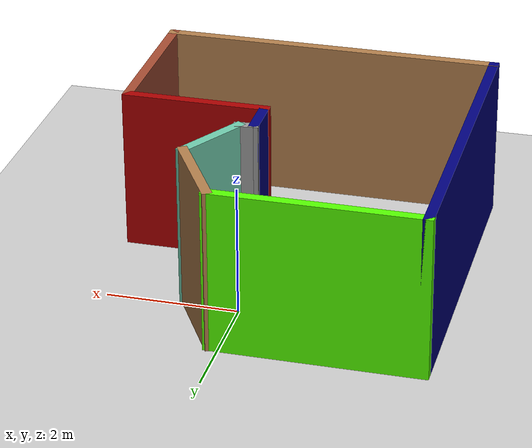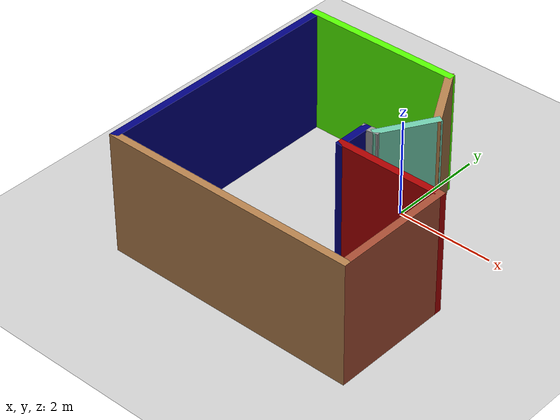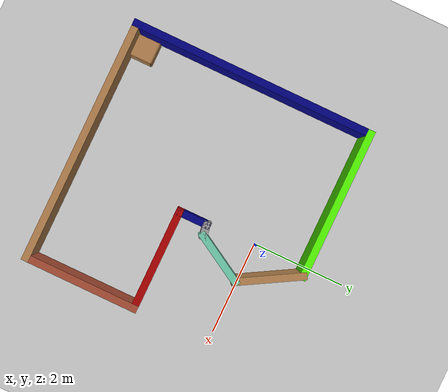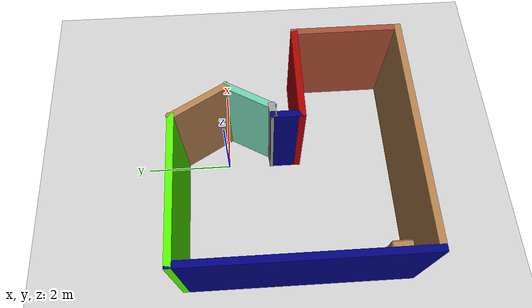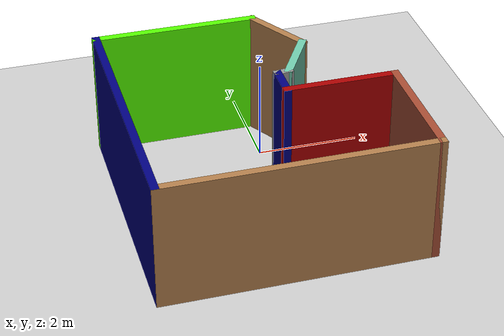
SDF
<sdf version="1.6">
 <world name="default">
  <light name="sun" type="directional">
   <pose>0 0 15 0 -0 0</pose>
   <diffuse>0.8 0.8 0.8 1</diffuse>
   <specular>0.2 0.2 0.2 1</specular>
   <attenuation>
    <range>1000</range>
    <constant>0.9</constant>
    <linear>0.01</linear>
    <quadratic>0.001</quadratic>
   </attenuation>
   <direction>-0.5 0.1 -0.9</direction>
  </light>
  <model name="ground_plane">
   <static>1</static>
   <link name="link">
    <collision name="collision">
     <geometry><plane><normal>0 0 1</normal><size>100 100</size></plane></geometry>
     <surface><friction><ode><mu>100</mu><mu2>50</mu2></ode></friction></surface>
    </collision>
    <visual name="visual">
     <transparency>1</transparency>
     <cast_shadows>0</cast_shadows>
     <geometry><plane><normal>0 0 1</normal><size>100 100</size></plane></geometry>
     <material>
      <script><uri>file://media/materials/scripts/gazebo.material</uri><name>Gazebo/Grey</name></script>
     </material>
    </visual>
   </link>
  </model>
  <gravity>0 0 -9.8</gravity>
  <magnetic_field>6e-06 2.3e-05 -4.2e-05</magnetic_field>
  <atmosphere type="adiabatic"/>
  <physics name="default_physics" default="0" type="ode">
   <max_step_size>0.001</max_step_size>
   <real_time_factor>1</real_time_factor>
   <real_time_update_rate>1000</real_time_update_rate>
  </physics>
  <scene><ambient>0.4 0.4 0.4 1</ambient><background>0.7 0.7 0.7 1</background><shadows>1</shadows></scene>
  <spherical_coordinates>
   <surface_model>EARTH_WGS84</surface_model>
   <latitude_deg>0</latitude_deg>
   <longitude_deg>0</longitude_deg>
   <elevation>0</elevation>
   <heading_deg>0</heading_deg>
  </spherical_coordinates>
  <model name="MyBuilding">
   <pose>-0.415 -1.46451 0 0 -0 0</pose>
   <link name="Wall_10">
    <collision name="Wall_10_Collision">
     <geometry><box><size>0.15 0.15 2.5</size></box></geometry>
     <pose>0 0 1.25 0 -0 0</pose>
    </collision>
    <visual name="Wall_10_Visual">
     <pose>0 0 1.25 0 -0 0</pose>
     <geometry><box><size>0.15 0.15 2.5</size></box></geometry>
     <material>
      <script><uri>file://media/materials/scripts/gazebo.material</uri><name>Gazebo/Grey</name></script>
      <ambient>1 1 1 1</ambient>
     </material>
     <meta><layer>0</layer></meta>
    </visual>
    <pose>0.45 0.386274 0 0 -0 0</pose>
   </link>
   <link name="Wall_12">
    <collision name="Wall_12_Collision">
     <geometry><box><size>0.75 0.15 2.5</size></box></geometry>
     <pose>0 0 1.25 0 -0 0</pose>
    </collision>
    <visual name="Wall_12_Visual">
     <pose>0 0 1.25 0 -0 0</pose>
     <geometry><box><size>0.75 0.15 2.5</size></box></geometry>
     <material>
      <script><uri>file://media/materials/scripts/gazebo.material</uri><name>Gazebo/Grey</name></script>
      <ambient>0 0 0.498039 1</ambient>
     </material>
     <meta><layer>0</layer></meta>
    </visual>
    <pose>0.45 0.086274 0 0 -0 1.5708</pose>
   </link>
   <link name="Wall_13">
    <collision name="Wall_13_Collision">
     <geometry><box><size>0.376765 0.15 2.5</size></box></geometry>
     <pose>0 0 1.25 0 -0 0</pose>
    </collision>
    <visual name="Wall_13_Visual">
     <pose>0 0 1.25 0 -0 0</pose>
     <geometry><box><size>0.376765 0.15 2.5</size></box></geometry>
     <material>
      <script><uri>file://media/materials/scripts/gazebo.material</uri><name>Gazebo/Grey</name></script>
      <ambient>1 1 1 1</ambient>
     </material>
     <meta><layer>0</layer></meta>
    </visual>
    <pose>0.5625 0.400393 0 0 -0 0.124848</pose>
   </link>
   <link name="Wall_2">
    <collision name="Wall_2_Collision">
     <geometry><box><size>1.25 0.15 2.5</size></box></geometry>
     <pose>0 0 1.25 0 -0 0</pose>
    </collision>
    <visual name="Wall_2_Visual">
     <pose>0 0 1.25 0 -0 0</pose>
     <geometry><box><size>1.25 0.15 2.5</size></box></geometry>
     <material>
      <script><uri>file://media/materials/scripts/gazebo.material</uri><name>Gazebo/Grey</name></script>
      <ambient>0.435294 0.796078 0.67451 1</ambient>
     </material>
     <meta><layer>0</layer></meta>
    </visual>
    <pose>0.95 0.890826 0 0 -0 1.0472</pose>
   </link>
   <link name="Wall_3">
    <collision name="Wall_3_Collision">
     <geometry><box><size>1.5 0.15 2.5</size></box></geometry>
     <pose>0 0 1.25 0 -0 0</pose>
    </collision>
    <visual name="Wall_3_Visual">
     <pose>0 0 1.25 0 -0 0</pose>
     <geometry><box><size>1.5 0.15 2.5</size></box></geometry>
     <material>
      <script><uri>file://media/materials/scripts/gazebo.material</uri><name>Gazebo/Wood</name></script>
      <ambient>1 1 1 1</ambient>
     </material>
     <meta><layer>0</layer></meta>
    </visual>
    <pose>0.8875 1.95171 0 0 -0 2.0944</pose>
   </link>
   <link name="Wall_4">
    <collision name="Wall_4_Collision">
     <geometry><box><size>3.25 0.15 2.5</size></box></geometry>
     <pose>0 0 1.25 0 -0 0</pose>
    </collision>
    <visual name="Wall_4_Visual">
     <pose>0 0 1.25 0 -0 0</pose>
     <geometry><box><size>3.25 0.15 2.5</size></box></geometry>
     <material>
      <script><uri>file://media/materials/scripts/gazebo.material</uri><name>Gazebo/Grey</name></script>
      <ambient>0.333333 1 0 1</ambient>
     </material>
     <meta><layer>0</layer></meta>
    </visual>
    <pose>-1 2.53627 0 0 -0 3.14159</pose>
   </link>
   <link name="Wall_5">
    <collision name="Wall_5_Collision">
     <geometry><box><size>5.25 0.15 2.5</size></box></geometry>
     <pose>0 0 1.25 0 -0 0</pose>
    </collision>
    <visual name="Wall_5_Visual">
     <pose>0 0 1.25 0 -0 0</pose>
     <geometry><box><size>5.25 0.15 2.5</size></box></geometry>
     <material>
      <script><uri>file://media/materials/scripts/gazebo.material</uri><name>Gazebo/Grey</name></script>
      <ambient>0 0 0.498039 1</ambient>
     </material>
     <meta><layer>0</layer></meta>
    </visual>
    <pose>-2.55 -0.013726 0 0 0 -1.5708</pose>
   </link>
   <link name="Wall_6">
    <collision name="Wall_6_Collision">
     <geometry><box><size>5.25 0.15 2.5</size></box></geometry>
     <pose>0 0 1.25 0 -0 0</pose>
    </collision>
    <visual name="Wall_6_Visual">
     <pose>0 0 1.25 0 -0 0</pose>
     <geometry><box><size>5.25 0.15 2.5</size></box></geometry>
     <material>
      <script><uri>file://media/materials/scripts/gazebo.material</uri><name>Gazebo/Wood</name></script>
      <ambient>1 1 1 1</ambient>
     </material>
     <meta><layer>0</layer></meta>
    </visual>
    <pose>0 -2.56373 0 0 -0 0</pose>
   </link>
   <link name="Wall_7">
    <collision name="Wall_7_Collision">
     <geometry><box><size>2.5 0.15 2.5</size></box></geometry>
     <pose>0 0 1.25 0 -0 0</pose>
    </collision>
    <visual name="Wall_7_Visual">
     <pose>0 0 1.25 0 -0 0</pose>
     <geometry><box><size>2.5 0.15 2.5</size></box></geometry>
     <material>
      <script><uri>file://media/materials/scripts/gazebo.material</uri><name>Gazebo/Bricks</name></script>
      <ambient>1 1 1 1</ambient>
     </material>
     <meta><layer>0</layer></meta>
    </visual>
    <pose>2.55 -1.38873 0 0 -0 1.5708</pose>
   </link>
   <link name="Wall_8">
    <collision name="Wall_8_Collision">
     <geometry><box><size>2.25 0.15 2.5</size></box></geometry>
     <pose>0 0 1.25 0 -0 0</pose>
    </collision>
    <visual name="Wall_8_Visual">
     <pose>0 0 1.25 0 -0 0</pose>
     <geometry><box><size>2.25 0.15 2.5</size></box></geometry>
     <material>
      <script><uri>file://media/materials/scripts/gazebo.material</uri><name>Gazebo/Grey</name></script>
      <ambient>0.666667 0 0 1</ambient>
     </material>
     <meta><layer>0</layer></meta>
    </visual>
    <pose>1.5 -0.213726 0 0 -0 3.14159</pose>
   </link>
   <static>1</static>
  </model>
  <model name="cabinet">
   <static>1</static>
   <link name="cabinet_bottom_plate">
    <inertial>
     <pose>0 0 -1 0 -0 0</pose>
     <inertia><ixx>2.05</ixx><ixy>0</ixy><ixz>0</ixz><iyy>2.05</iyy><iyz>0</iyz><izz>2.05</izz></inertia>
     <mass>25</mass>
    </inertial>
    <collision name="cabinet_bottom_plate_geom">
     <pose>0 0 0.01 0 -0 0</pose>
     <geometry><box><size>0.45 0.45 0.02</size></box></geometry>
    </collision>
    <visual name="cabinet_bottom_plate_geom_visual">
     <pose>0 0 0.01 0 -0 0</pose>
     <geometry><box><size>0.45 0.45 0.02</size></box></geometry>
     <material>
      <script><uri>file://media/materials/scripts/gazebo.material</uri><name>Gazebo/Wood</name></script>
     </material>
    </visual>
    <collision name="cabinet_bottom_plate_geom_cabinet_back_plate">
     <pose>0.235 0 0.51 0 -0 0</pose>
     <geometry><box><size>0.02 0.45 1.02</size></box></geometry>
    </collision>
    <visual name="cabinet_bottom_plate_geom_cabinet_back_plate_visual">
     <pose>0.235 0 0.51 0 -0 0</pose>
     <geometry><box><size>0.02 0.45 1.02</size></box></geometry>
     <material>
      <script><uri>file://media/materials/scripts/gazebo.material</uri><name>Gazebo/Wood</name></script>
     </material>
    </visual>
    <collision name="cabinet_bottom_plate_geom_cabinet_left_plate">
     <pose>0 0.235 0.51 0 -0 0</pose>
     <geometry><box><size>0.45 0.02 1.02</size></box></geometry>
    </collision>
    <visual name="cabinet_bottom_plate_geom_cabinet_left_plate_visual">
     <pose>0 0.235 0.51 0 -0 0</pose>
     <geometry><box><size>0.45 0.02 1.02</size></box></geometry>
     <material>
      <script><uri>file://media/materials/scripts/gazebo.material</uri><name>Gazebo/Wood</name></script>
     </material>
    </visual>
    <collision name="cabinet_bottom_plate_geom_cabinet_middle_plate">
     <pose>0 0 0.51 0 -0 0</pose>
     <geometry><box><size>0.45 0.45 0.02</size></box></geometry>
    </collision>
    <visual name="cabinet_bottom_plate_geom_cabinet_middle_plate_visual">
     <pose>0 0 0.51 0 -0 0</pose>
     <geometry><box><size>0.45 0.45 0.02</size></box></geometry>
     <material>
      <script><uri>file://media/materials/scripts/gazebo.material</uri><name>Gazebo/Wood</name></script>
     </material>
    </visual>
    <collision name="cabinet_bottom_plate_geom_cabinet_right_plate">
     <pose>0 -0.235 0.51 0 -0 0</pose>
     <geometry><box><size>0.45 0.02 1.02</size></box></geometry>
    </collision>
    <visual name="cabinet_bottom_plate_geom_cabinet_right_plate_visual">
     <pose>0 -0.235 0.51 0 -0 0</pose>
     <geometry><box><size>0.45 0.02 1.02</size></box></geometry>
     <material>
      <script><uri>file://media/materials/scripts/gazebo.material</uri><name>Gazebo/Wood</name></script>
     </material>
    </visual>
    <collision name="cabinet_bottom_plate_geom_cabinet_top_plate">
     <pose>0 0 1.01 0 -0 0</pose>
     <geometry><box><size>0.45 0.45 0.02</size></box></geometry>
    </collision>
    <visual name="cabinet_bottom_plate_geom_cabinet_top_plate_visual">
     <pose>0 0 1.01 0 -0 0</pose>
     <geometry><box><size>0.45 0.45 0.02</size></box></geometry>
     <material>
      <script><uri>file://media/materials/scripts/gazebo.material</uri><name>Gazebo/Wood</name></script>
     </material>
    </visual>
   </link>
   <pose>-2.64131 -3.72735 0 0 -0 0</pose>
  </model>
 </world>
</sdf>
